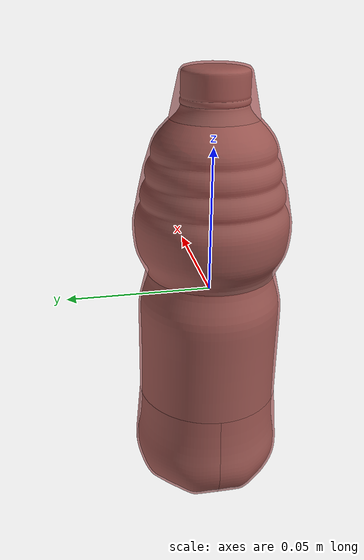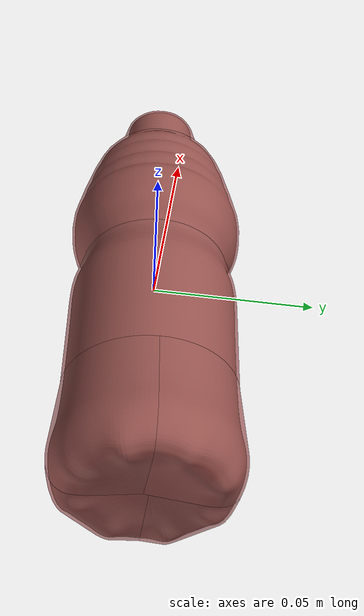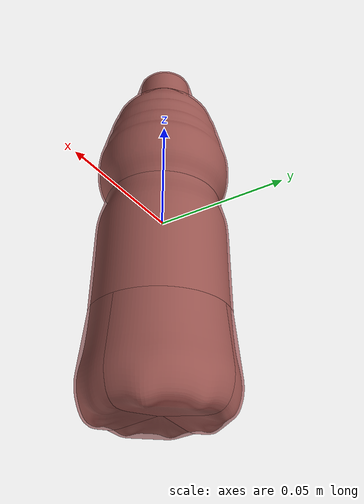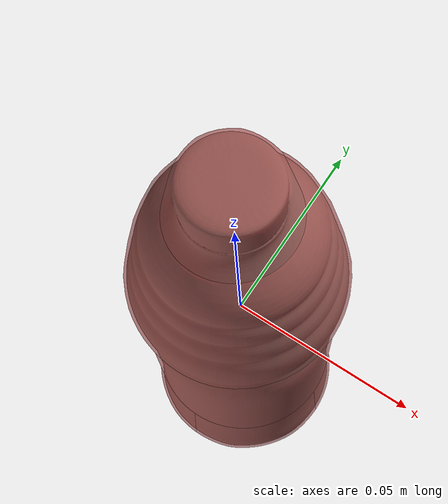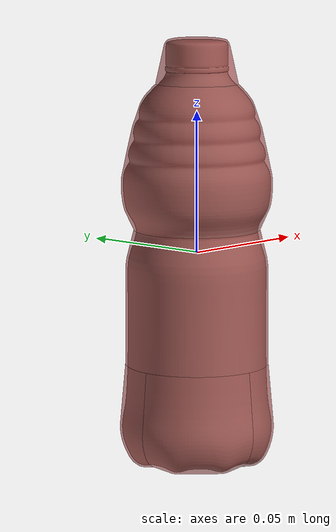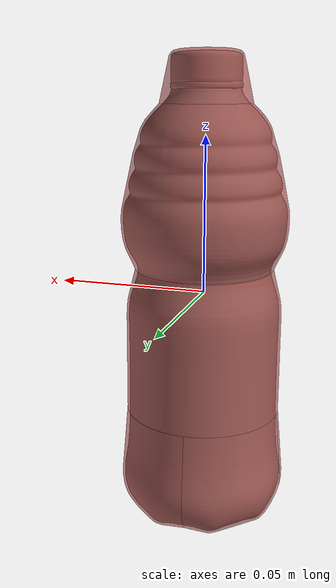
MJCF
<?xml version='1.0' encoding='utf-8'?>
<mujoco model="bottled_water_21">
  <asset>
    <mesh file="visual/model_normalized_0.obj" name="model_normalized_0_vis" scale="0.15 0.15 0.15" refquat="1.0 0.0 0.0 0.0" />
    <texture type="2d" name="image0" file="visual/image0.png" />
    <material name="Base.004" texture="image0" specular="0.5" shininess="0.359999993" />
    <mesh file="collision/collision_mesh_collision_0.obj" name="bottled_collision_mesh_0" scale="0.15 0.15 0.15" refquat="1.0 0.0 0.0 0.0" />
    <mesh file="collision/collision_mesh_collision_1.obj" name="bottled_collision_mesh_1" scale="0.15 0.15 0.15" refquat="1.0 0.0 0.0 0.0" />
    <mesh file="collision/collision_mesh_collision_2.obj" name="bottled_collision_mesh_2" scale="0.15 0.15 0.15" refquat="1.0 0.0 0.0 0.0" />
    <mesh file="collision/collision_mesh_collision_3.obj" name="bottled_collision_mesh_3" scale="0.15 0.15 0.15" refquat="1.0 0.0 0.0 0.0" />
    <mesh file="collision/collision_mesh_collision_4.obj" name="bottled_collision_mesh_4" scale="0.15 0.15 0.15" refquat="1.0 0.0 0.0 0.0" />
    <mesh file="collision/collision_mesh_collision_5.obj" name="bottled_collision_mesh_5" scale="0.15 0.15 0.15" refquat="1.0 0.0 0.0 0.0" />
    <mesh file="collision/collision_mesh_collision_6.obj" name="bottled_collision_mesh_6" scale="0.15 0.15 0.15" refquat="1.0 0.0 0.0 0.0" />
    </asset>
  <default>
    <default class="region">
      <geom group="1" conaffinity="0" contype="0" rgba="0 1 0 0" />
      </default>
    <default class="collision">
      <geom group="0" rgba="0.5 0 0 0.5" density="1000.0" />
      </default>
    </default>
  <worldbody>
    <body>
      <body name="object">
        <geom solimp="0.998 0.998 0.001" solref="0.001 1" density="100" friction="0.95 0.3 0.1" type="mesh" mesh="model_normalized_0_vis" conaffinity="0" contype="0" group="1" material="Base.004" />
        <geom class="region" name="reg_bbox" type="box" pos="1.872374999999926e-05 2.1221999999999906e-05 4.1354999999999864e-05" size="0.025331432999999997 0.026059848 0.0749125245" />
        <geom mesh="bottled_collision_mesh_0" type="mesh" class="collision" />
        <geom mesh="bottled_collision_mesh_1" type="mesh" class="collision" />
        <geom mesh="bottled_collision_mesh_2" type="mesh" class="collision" />
        <geom mesh="bottled_collision_mesh_3" type="mesh" class="collision" />
        <geom mesh="bottled_collision_mesh_4" type="mesh" class="collision" />
        <geom mesh="bottled_collision_mesh_5" type="mesh" class="collision" />
        <geom mesh="bottled_collision_mesh_6" type="mesh" class="collision" />
        </body>
      </body>
    </worldbody>
  </mujoco>
